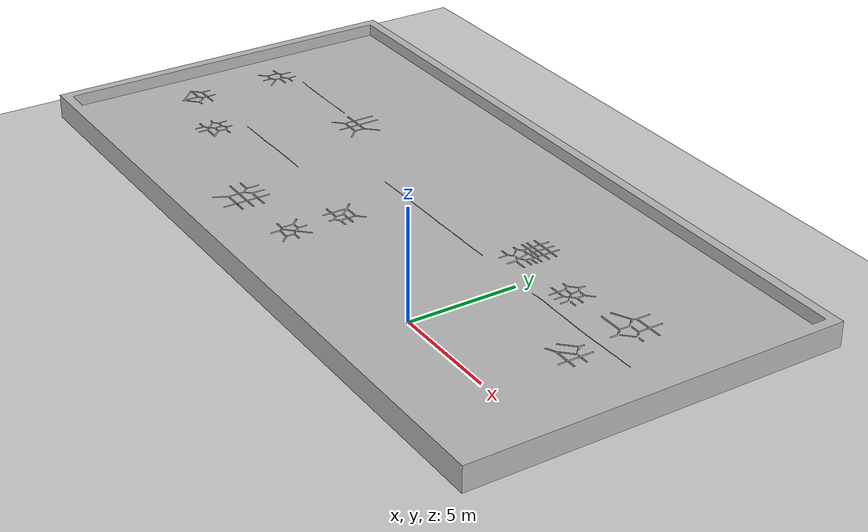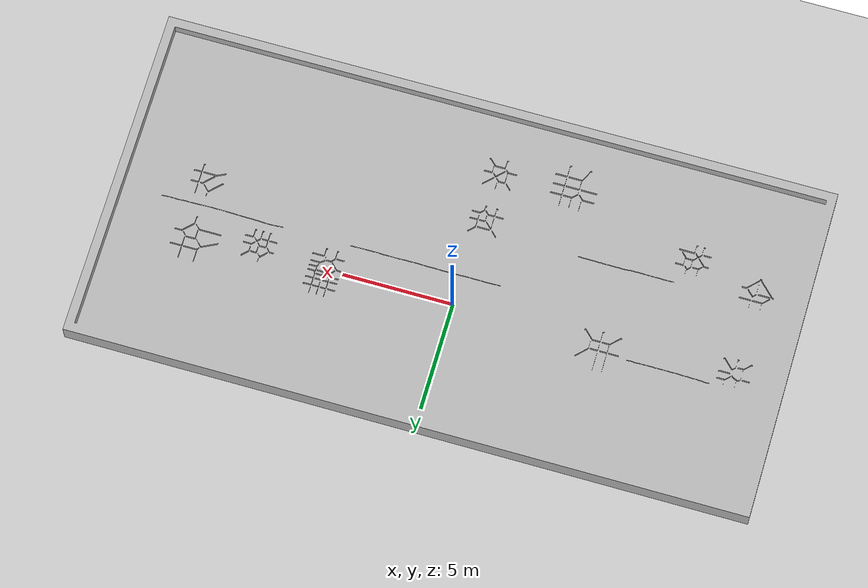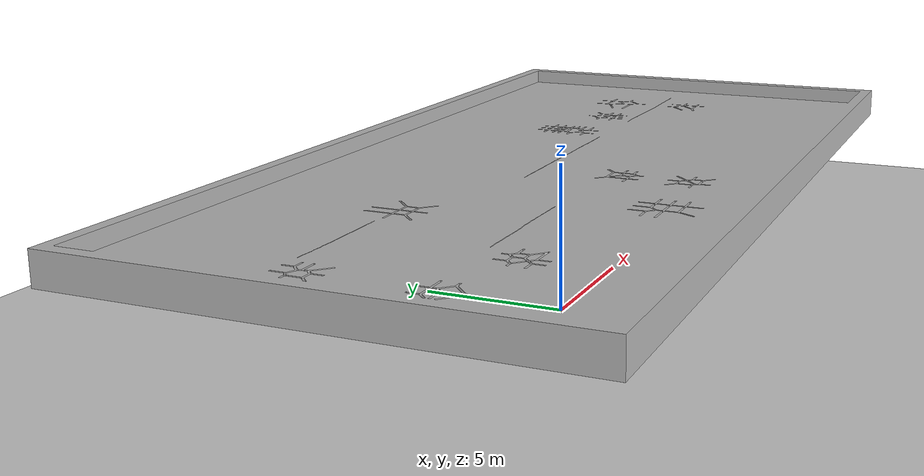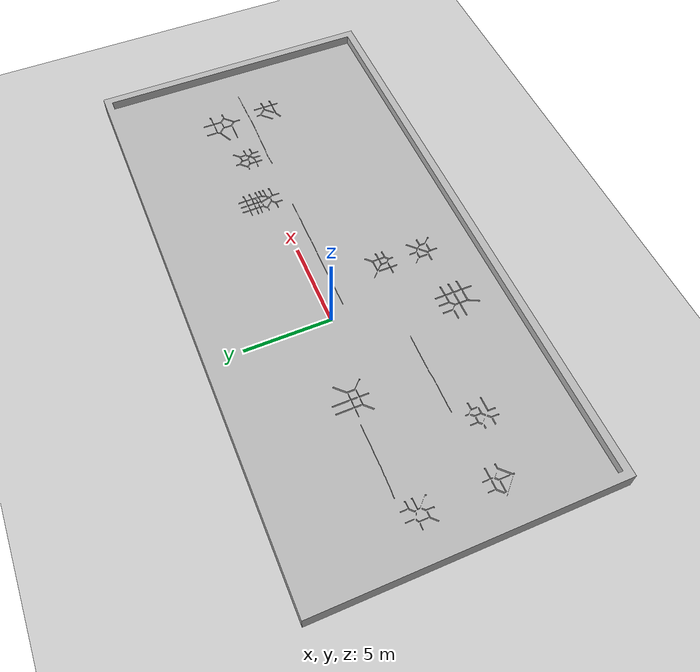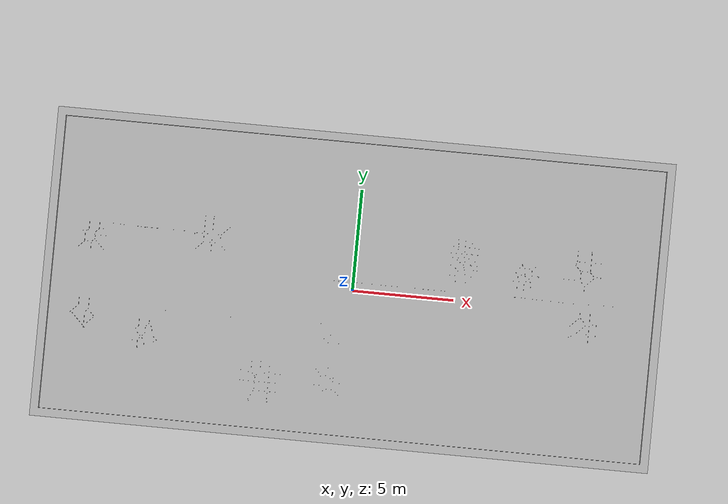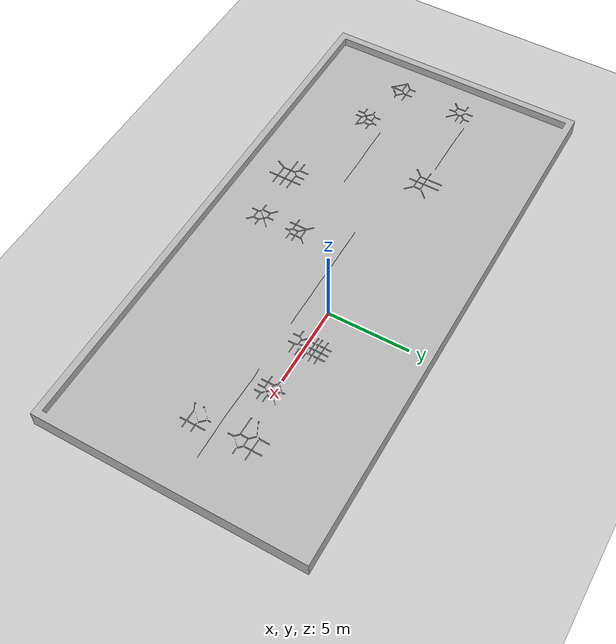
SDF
<sdf version='1.10'>
  <world name='empty'>
    <physics name='1ms' type='ignored'>
      <max_step_size>0.001</max_step_size>
      <real_time_factor>1</real_time_factor>
      <real_time_update_rate>1000</real_time_update_rate>
    </physics>
    <plugin name='gz::sim::systems::Physics' filename='gz-sim-physics-system'/>
    <plugin name='gz::sim::systems::UserCommands' filename='gz-sim-user-commands-system'/>
    <plugin name='gz::sim::systems::SceneBroadcaster' filename='gz-sim-scene-broadcaster-system'/>
    <plugin name='gz::sim::systems::Contact' filename='gz-sim-contact-system'/>
    <plugin name='gz::sim::systems::Sensors' filename='gz-sim-sensors-system'>
      <render_engine>ogre2</render_engine>
    </plugin>
    <plugin name='gz::sim::systems::Imu' filename='gz-sim-imu-system'/>
    <plugin name='gz::sim::systems::NavSat' filename='gz-sim-navsat-system'/>
    <spherical_coordinates>
      <surface_model>EARTH_WGS84</surface_model>
      <world_frame_orientation>ENU</world_frame_orientation>
      <latitude_deg>47.478949999999998</latitude_deg>
      <longitude_deg>19.057784999999999</longitude_deg>
      <elevation>0</elevation>
      <heading_deg>0</heading_deg>
    </spherical_coordinates>
    <gravity>0 0 -9.8000000000000007</gravity>
    <magnetic_field>5.5644999999999998e-06 2.2875799999999999e-05 -4.2388400000000002e-05</magnetic_field>
    <atmosphere type='adiabatic'/>
    <scene>
      <ambient>0.400000006 0.400000006 0.400000006 1</ambient>
      <background>0.699999988 0.699999988 0.699999988 1</background>
      <shadows>true</shadows>
    </scene>
    <model name='ground_plane'>
      <static>true</static>
      <link name='link'>
        <collision name='collision'>
          <geometry>
            <plane>
              <normal>0 0 1</normal>
              <size>100 100</size>
            </plane>
          </geometry>
          <surface>
            <friction>
              <ode>
                <mu>50</mu>
              </ode>
            </friction>
            <bounce/>
            <contact/>
          </surface>
        </collision>
        <visual name='visual'>
          <geometry>
            <plane>
              <normal>0 0 1</normal>
              <size>100 100</size>
            </plane>
          </geometry>
          <material>
            <ambient>0.800000012 0.800000012 0.800000012 1</ambient>
            <diffuse>0.800000012 0.800000012 0.800000012 1</diffuse>
            <specular>0.800000012 0.800000012 0.800000012 1</specular>
          </material>
        </visual>
        <pose>0 0 0 0 0 0</pose>
        <inertial>
          <pose>0 0 0 0 0 0</pose>
          <mass>1</mass>
          <inertia>
            <ixx>1</ixx>
            <ixy>0</ixy>
            <ixz>0</ixz>
            <iyy>1</iyy>
            <iyz>0</iyz>
            <izz>1</izz>
          </inertia>
        </inertial>
        <enable_wind>false</enable_wind>
      </link>
      <pose>0 0 0 0 0 0</pose>
      <self_collide>false</self_collide>
    </model>
    <model name='road_model'>
      <static>true</static>
      <link name='road_link'>
        <pose>0 0 0 0 0 0</pose>
        <visual name='visual'>
          <geometry>
            <mesh>
              <uri>file:///home/aldoghry/ros2/rw_ws/src/rw/worlds/new_road_b_02.dae</uri>
              <scale>0.10000000000000001 0.10000000000000001 0.10000000000000001</scale>
            </mesh>
          </geometry>
        </visual>
        <collision name='collision'>
          <geometry>
            <mesh>
              <uri>file:///home/aldoghry/ros2/rw_ws/src/rw/worlds/new_road_b_02.dae</uri>
              <scale>0.10000000000000001 0.10000000000000001 0.10000000000000001</scale>
            </mesh>
          </geometry>
        </collision>
        <inertial>
          <pose>0 0 0 0 0 0</pose>
          <mass>1</mass>
          <inertia>
            <ixx>1</ixx>
            <ixy>0</ixy>
            <ixz>0</ixz>
            <iyy>1</iyy>
            <iyz>0</iyz>
            <izz>1</izz>
          </inertia>
        </inertial>
        <enable_wind>false</enable_wind>
      </link>
      <pose>0 0 5 0 0 0</pose>
      <self_collide>false</self_collide>
    </model>
    <light name='sun' type='directional'>
      <pose>0 0 10 0 0 0</pose>
      <cast_shadows>true</cast_shadows>
      <intensity>1</intensity>
      <direction>-0.5 0.10000000000000001 -0.90000000000000002</direction>
      <diffuse>0.800000012 0.800000012 0.800000012 1</diffuse>
      <specular>0.200000003 0.200000003 0.200000003 1</specular>
      <attenuation>
        <range>1000</range>
        <linear>0.01</linear>
        <constant>0.90000000000000002</constant>
        <quadratic>0.001</quadratic>
      </attenuation>
      <spot>
        <inner_angle>0</inner_angle>
        <outer_angle>0</outer_angle>
        <falloff>0</falloff>
      </spot>
    </light>
  </world>
</sdf>
